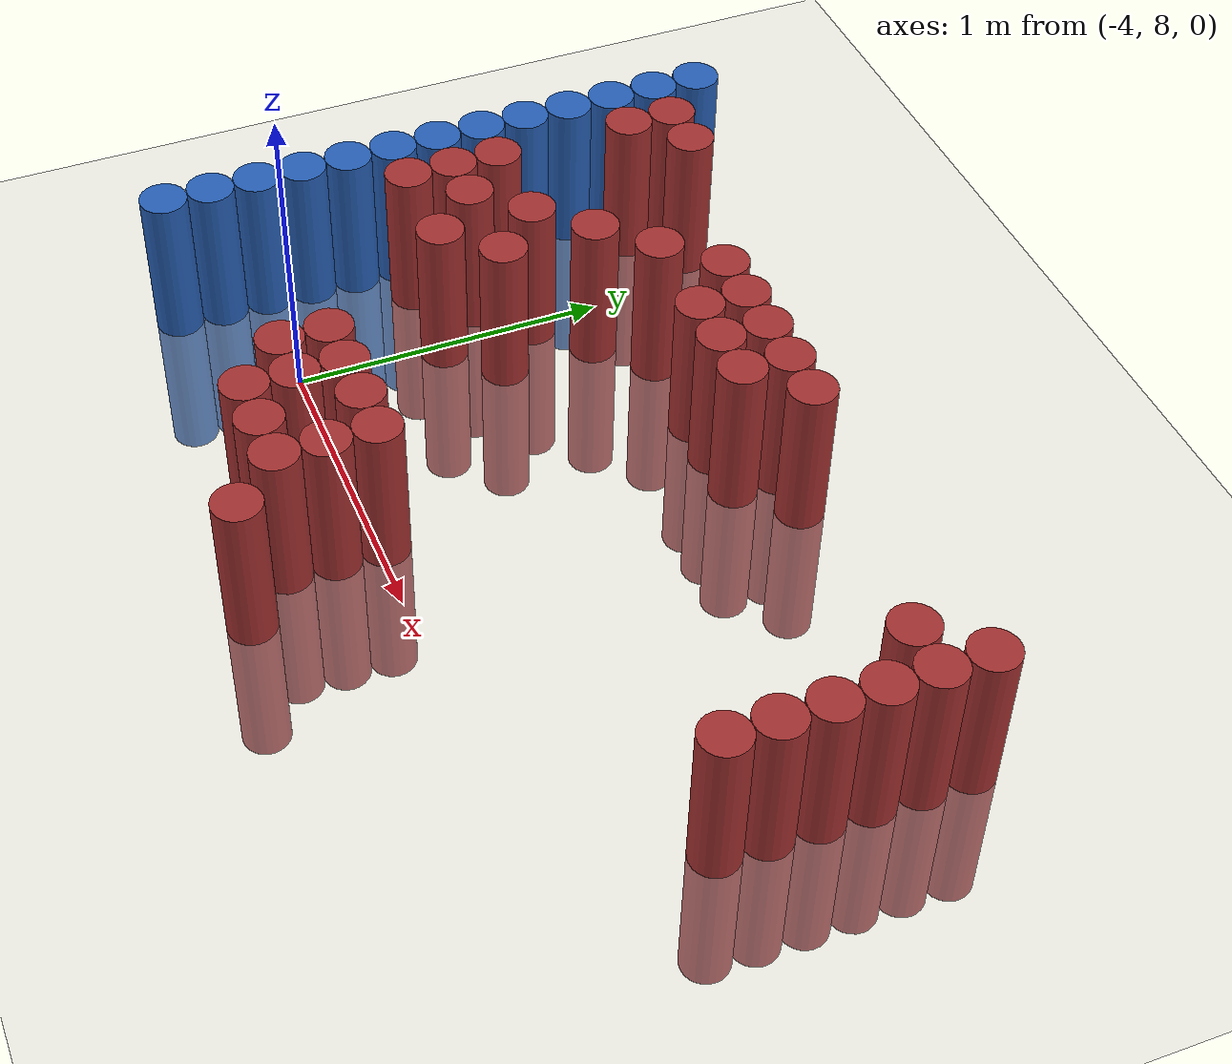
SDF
<sdf version="1.6">
 <world name="default">
  <model name="ground_plane">
   <static>1</static>
   <link name="link">
    <collision name="collision">
     <geometry><plane><normal>0 0 1</normal><size>100 100</size></plane></geometry>
     <surface><friction><ode><mu>100</mu><mu2>50</mu2></ode></friction></surface>
    </collision>
    <visual name="visual">
     <cast_shadows>0</cast_shadows>
     <geometry><plane><normal>0 0 1</normal><size>100 100</size></plane></geometry>
     <material>
      <script><uri>file://media/materials/scripts/gazebo.material</uri><name>Gazebo/Grey</name></script>
     </material>
    </visual>
   </link>
  </model>
  <model name="unit_cylinder_113">
   <static>1</static>
   <pose>-4.425000 7.725000 0.000000 0.000000 0.000000 0.000000</pose>
   <link name="link">
    <inertial>
     <mass>1</mass>
     <inertia><ixx>0.145833</ixx><ixy>0</ixy><ixz>0</ixz><iyy>0.145833</iyy><iyz>0</iyz><izz>0.125</izz></inertia>
    </inertial>
    <collision name="collision">
     <geometry><cylinder><radius>0.075000</radius><length>1</length></cylinder></geometry>
    </collision>
    <visual name="visual">
     <geometry><cylinder><radius>0.075000</radius><length>1</length></cylinder></geometry>
     <material>
      <ambient>0.152000 0.379000 0.720000 1</ambient>
      <diffuse>0.152000 0.379000 0.720000 1</diffuse>
     </material>
     <material>
      <script><name>Gazebo/Grey</name><uri>file://media/materials/scripts/gazebo.material</uri></script>
     </material>
    </visual>
   </link>
  </model>
  <model name="unit_cylinder_114">
   <static>1</static>
   <pose>-4.425000 7.875000 0.000000 0.000000 0.000000 0.000000</pose>
   <link name="link">
    <inertial>
     <mass>1</mass>
     <inertia><ixx>0.145833</ixx><ixy>0</ixy><ixz>0</ixz><iyy>0.145833</iyy><iyz>0</iyz><izz>0.125</izz></inertia>
    </inertial>
    <collision name="collision">
     <geometry><cylinder><radius>0.075000</radius><length>1</length></cylinder></geometry>
    </collision>
    <visual name="visual">
     <geometry><cylinder><radius>0.075000</radius><length>1</length></cylinder></geometry>
     <material>
      <ambient>0.152000 0.379000 0.720000 1</ambient>
      <diffuse>0.152000 0.379000 0.720000 1</diffuse>
     </material>
     <material>
      <script><name>Gazebo/Grey</name><uri>file://media/materials/scripts/gazebo.material</uri></script>
     </material>
    </visual>
   </link>
  </model>
  <model name="unit_cylinder_115">
   <static>1</static>
   <pose>-4.425000 8.025000 0.000000 0.000000 0.000000 0.000000</pose>
   <link name="link">
    <inertial>
     <mass>1</mass>
     <inertia><ixx>0.145833</ixx><ixy>0</ixy><ixz>0</ixz><iyy>0.145833</iyy><iyz>0</iyz><izz>0.125</izz></inertia>
    </inertial>
    <collision name="collision">
     <geometry><cylinder><radius>0.075000</radius><length>1</length></cylinder></geometry>
    </collision>
    <visual name="visual">
     <geometry><cylinder><radius>0.075000</radius><length>1</length></cylinder></geometry>
     <material>
      <ambient>0.152000 0.379000 0.720000 1</ambient>
      <diffuse>0.152000 0.379000 0.720000 1</diffuse>
     </material>
     <material>
      <script><name>Gazebo/Grey</name><uri>file://media/materials/scripts/gazebo.material</uri></script>
     </material>
    </visual>
   </link>
  </model>
  <model name="unit_cylinder_116">
   <static>1</static>
   <pose>-4.425000 8.175000 0.000000 0.000000 0.000000 0.000000</pose>
   <link name="link">
    <inertial>
     <mass>1</mass>
     <inertia><ixx>0.145833</ixx><ixy>0</ixy><ixz>0</ixz><iyy>0.145833</iyy><iyz>0</iyz><izz>0.125</izz></inertia>
    </inertial>
    <collision name="collision">
     <geometry><cylinder><radius>0.075000</radius><length>1</length></cylinder></geometry>
    </collision>
    <visual name="visual">
     <geometry><cylinder><radius>0.075000</radius><length>1</length></cylinder></geometry>
     <material>
      <ambient>0.152000 0.379000 0.720000 1</ambient>
      <diffuse>0.152000 0.379000 0.720000 1</diffuse>
     </material>
     <material>
      <script><name>Gazebo/Grey</name><uri>file://media/materials/scripts/gazebo.material</uri></script>
     </material>
    </visual>
   </link>
  </model>
  <model name="unit_cylinder_117">
   <static>1</static>
   <pose>-4.425000 8.325000 0.000000 0.000000 0.000000 0.000000</pose>
   <link name="link">
    <inertial>
     <mass>1</mass>
     <inertia><ixx>0.145833</ixx><ixy>0</ixy><ixz>0</ixz><iyy>0.145833</iyy><iyz>0</iyz><izz>0.125</izz></inertia>
    </inertial>
    <collision name="collision">
     <geometry><cylinder><radius>0.075000</radius><length>1</length></cylinder></geometry>
    </collision>
    <visual name="visual">
     <geometry><cylinder><radius>0.075000</radius><length>1</length></cylinder></geometry>
     <material>
      <ambient>0.152000 0.379000 0.720000 1</ambient>
      <diffuse>0.152000 0.379000 0.720000 1</diffuse>
     </material>
     <material>
      <script><name>Gazebo/Grey</name><uri>file://media/materials/scripts/gazebo.material</uri></script>
     </material>
    </visual>
   </link>
  </model>
  <model name="unit_cylinder_118">
   <static>1</static>
   <pose>-4.425000 8.475000 0.000000 0.000000 0.000000 0.000000</pose>
   <link name="link">
    <inertial>
     <mass>1</mass>
     <inertia><ixx>0.145833</ixx><ixy>0</ixy><ixz>0</ixz><iyy>0.145833</iyy><iyz>0</iyz><izz>0.125</izz></inertia>
    </inertial>
    <collision name="collision">
     <geometry><cylinder><radius>0.075000</radius><length>1</length></cylinder></geometry>
    </collision>
    <visual name="visual">
     <geometry><cylinder><radius>0.075000</radius><length>1</length></cylinder></geometry>
     <material>
      <ambient>0.152000 0.379000 0.720000 1</ambient>
      <diffuse>0.152000 0.379000 0.720000 1</diffuse>
     </material>
     <material>
      <script><name>Gazebo/Grey</name><uri>file://media/materials/scripts/gazebo.material</uri></script>
     </material>
    </visual>
   </link>
  </model>
  <model name="unit_cylinder_119">
   <static>1</static>
   <pose>-4.425000 8.625000 0.000000 0.000000 0.000000 0.000000</pose>
   <link name="link">
    <inertial>
     <mass>1</mass>
     <inertia><ixx>0.145833</ixx><ixy>0</ixy><ixz>0</ixz><iyy>0.145833</iyy><iyz>0</iyz><izz>0.125</izz></inertia>
    </inertial>
    <collision name="collision">
     <geometry><cylinder><radius>0.075000</radius><length>1</length></cylinder></geometry>
    </collision>
    <visual name="visual">
     <geometry><cylinder><radius>0.075000</radius><length>1</length></cylinder></geometry>
     <material>
      <ambient>0.152000 0.379000 0.720000 1</ambient>
      <diffuse>0.152000 0.379000 0.720000 1</diffuse>
     </material>
     <material>
      <script><name>Gazebo/Grey</name><uri>file://media/materials/scripts/gazebo.material</uri></script>
     </material>
    </visual>
   </link>
  </model>
  <model name="unit_cylinder_120">
   <static>1</static>
   <pose>-4.425000 8.775000 0.000000 0.000000 0.000000 0.000000</pose>
   <link name="link">
    <inertial>
     <mass>1</mass>
     <inertia><ixx>0.145833</ixx><ixy>0</ixy><ixz>0</ixz><iyy>0.145833</iyy><iyz>0</iyz><izz>0.125</izz></inertia>
    </inertial>
    <collision name="collision">
     <geometry><cylinder><radius>0.075000</radius><length>1</length></cylinder></geometry>
    </collision>
    <visual name="visual">
     <geometry><cylinder><radius>0.075000</radius><length>1</length></cylinder></geometry>
     <material>
      <ambient>0.152000 0.379000 0.720000 1</ambient>
      <diffuse>0.152000 0.379000 0.720000 1</diffuse>
     </material>
     <material>
      <script><name>Gazebo/Grey</name><uri>file://media/materials/scripts/gazebo.material</uri></script>
     </material>
    </visual>
   </link>
  </model>
  <model name="unit_cylinder_121">
   <static>1</static>
   <pose>-4.425000 8.925000 0.000000 0.000000 0.000000 0.000000</pose>
   <link name="link">
    <inertial>
     <mass>1</mass>
     <inertia><ixx>0.145833</ixx><ixy>0</ixy><ixz>0</ixz><iyy>0.145833</iyy><iyz>0</iyz><izz>0.125</izz></inertia>
    </inertial>
    <collision name="collision">
     <geometry><cylinder><radius>0.075000</radius><length>1</length></cylinder></geometry>
    </collision>
    <visual name="visual">
     <geometry><cylinder><radius>0.075000</radius><length>1</length></cylinder></geometry>
     <material>
      <ambient>0.152000 0.379000 0.720000 1</ambient>
      <diffuse>0.152000 0.379000 0.720000 1</diffuse>
     </material>
     <material>
      <script><name>Gazebo/Grey</name><uri>file://media/materials/scripts/gazebo.material</uri></script>
     </material>
    </visual>
   </link>
  </model>
  <model name="unit_cylinder_122">
   <static>1</static>
   <pose>-4.425000 9.075000 0.000000 0.000000 0.000000 0.000000</pose>
   <link name="link">
    <inertial>
     <mass>1</mass>
     <inertia><ixx>0.145833</ixx><ixy>0</ixy><ixz>0</ixz><iyy>0.145833</iyy><iyz>0</iyz><izz>0.125</izz></inertia>
    </inertial>
    <collision name="collision">
     <geometry><cylinder><radius>0.075000</radius><length>1</length></cylinder></geometry>
    </collision>
    <visual name="visual">
     <geometry><cylinder><radius>0.075000</radius><length>1</length></cylinder></geometry>
     <material>
      <ambient>0.152000 0.379000 0.720000 1</ambient>
      <diffuse>0.152000 0.379000 0.720000 1</diffuse>
     </material>
     <material>
      <script><name>Gazebo/Grey</name><uri>file://media/materials/scripts/gazebo.material</uri></script>
     </material>
    </visual>
   </link>
  </model>
  <model name="unit_cylinder_123">
   <static>1</static>
   <pose>-4.425000 9.225000 0.000000 0.000000 0.000000 0.000000</pose>
   <link name="link">
    <inertial>
     <mass>1</mass>
     <inertia><ixx>0.145833</ixx><ixy>0</ixy><ixz>0</ixz><iyy>0.145833</iyy><iyz>0</iyz><izz>0.125</izz></inertia>
    </inertial>
    <collision name="collision">
     <geometry><cylinder><radius>0.075000</radius><length>1</length></cylinder></geometry>
    </collision>
    <visual name="visual">
     <geometry><cylinder><radius>0.075000</radius><length>1</length></cylinder></geometry>
     <material>
      <ambient>0.152000 0.379000 0.720000 1</ambient>
      <diffuse>0.152000 0.379000 0.720000 1</diffuse>
     </material>
     <material>
      <script><name>Gazebo/Grey</name><uri>file://media/materials/scripts/gazebo.material</uri></script>
     </material>
    </visual>
   </link>
  </model>
  <model name="unit_cylinder_124">
   <static>1</static>
   <pose>-4.425000 9.375000 0.000000 0.000000 0.000000 0.000000</pose>
   <link name="link">
    <inertial>
     <mass>1</mass>
     <inertia><ixx>0.145833</ixx><ixy>0</ixy><ixz>0</ixz><iyy>0.145833</iyy><iyz>0</iyz><izz>0.125</izz></inertia>
    </inertial>
    <collision name="collision">
     <geometry><cylinder><radius>0.075000</radius><length>1</length></cylinder></geometry>
    </collision>
    <visual name="visual">
     <geometry><cylinder><radius>0.075000</radius><length>1</length></cylinder></geometry>
     <material>
      <ambient>0.152000 0.379000 0.720000 1</ambient>
      <diffuse>0.152000 0.379000 0.720000 1</diffuse>
     </material>
     <material>
      <script><name>Gazebo/Grey</name><uri>file://media/materials/scripts/gazebo.material</uri></script>
     </material>
    </visual>
   </link>
  </model>
  <model name="unit_cylinder_125">
   <static>1</static>
   <pose>-4.425000 9.525000 0.000000 0.000000 0.000000 0.000000</pose>
   <link name="link">
    <inertial>
     <mass>1</mass>
     <inertia><ixx>0.145833</ixx><ixy>0</ixy><ixz>0</ixz><iyy>0.145833</iyy><iyz>0</iyz><izz>0.125</izz></inertia>
    </inertial>
    <collision name="collision">
     <geometry><cylinder><radius>0.075000</radius><length>1</length></cylinder></geometry>
    </collision>
    <visual name="visual">
     <geometry><cylinder><radius>0.075000</radius><length>1</length></cylinder></geometry>
     <material>
      <ambient>0.152000 0.379000 0.720000 1</ambient>
      <diffuse>0.152000 0.379000 0.720000 1</diffuse>
     </material>
     <material>
      <script><name>Gazebo/Grey</name><uri>file://media/materials/scripts/gazebo.material</uri></script>
     </material>
    </visual>
   </link>
  </model>
  <model name="unit_cylinder_129">
   <static>1</static>
   <pose>-4.275000 8.475000 0.000000 0.000000 0.000000 0.000000</pose>
   <link name="link">
    <inertial>
     <mass>1</mass>
     <inertia><ixx>0.145833</ixx><ixy>0</ixy><ixz>0</ixz><iyy>0.145833</iyy><iyz>0</iyz><izz>0.125</izz></inertia>
    </inertial>
    <collision name="collision">
     <geometry><cylinder><radius>0.075000</radius><length>1</length></cylinder></geometry>
    </collision>
    <visual name="visual">
     <geometry><cylinder><radius>0.075000</radius><length>1</length></cylinder></geometry>
     <material>
      <ambient>0.648000 0.192000 0.192000 1</ambient>
      <diffuse>0.648000 0.192000 0.192000 1</diffuse>
     </material>
     <material>
      <script><name>Gazebo/Grey</name><uri>file://media/materials/scripts/gazebo.material</uri></script>
     </material>
    </visual>
   </link>
  </model>
  <model name="unit_cylinder_130">
   <static>1</static>
   <pose>-4.275000 8.625000 0.000000 0.000000 0.000000 0.000000</pose>
   <link name="link">
    <inertial>
     <mass>1</mass>
     <inertia><ixx>0.145833</ixx><ixy>0</ixy><ixz>0</ixz><iyy>0.145833</iyy><iyz>0</iyz><izz>0.125</izz></inertia>
    </inertial>
    <collision name="collision">
     <geometry><cylinder><radius>0.075000</radius><length>1</length></cylinder></geometry>
    </collision>
    <visual name="visual">
     <geometry><cylinder><radius>0.075000</radius><length>1</length></cylinder></geometry>
     <material>
      <ambient>0.648000 0.192000 0.192000 1</ambient>
      <diffuse>0.648000 0.192000 0.192000 1</diffuse>
     </material>
     <material>
      <script><name>Gazebo/Grey</name><uri>file://media/materials/scripts/gazebo.material</uri></script>
     </material>
    </visual>
   </link>
  </model>
  <model name="unit_cylinder_131">
   <static>1</static>
   <pose>-4.275000 8.775000 0.000000 0.000000 0.000000 0.000000</pose>
   <link name="link">
    <inertial>
     <mass>1</mass>
     <inertia><ixx>0.145833</ixx><ixy>0</ixy><ixz>0</ixz><iyy>0.145833</iyy><iyz>0</iyz><izz>0.125</izz></inertia>
    </inertial>
    <collision name="collision">
     <geometry><cylinder><radius>0.075000</radius><length>1</length></cylinder></geometry>
    </collision>
    <visual name="visual">
     <geometry><cylinder><radius>0.075000</radius><length>1</length></cylinder></geometry>
     <material>
      <ambient>0.648000 0.192000 0.192000 1</ambient>
      <diffuse>0.648000 0.192000 0.192000 1</diffuse>
     </material>
     <material>
      <script><name>Gazebo/Grey</name><uri>file://media/materials/scripts/gazebo.material</uri></script>
     </material>
    </visual>
   </link>
  </model>
  <model name="unit_cylinder_132">
   <static>1</static>
   <pose>-4.275000 9.225000 0.000000 0.000000 0.000000 0.000000</pose>
   <link name="link">
    <inertial>
     <mass>1</mass>
     <inertia><ixx>0.145833</ixx><ixy>0</ixy><ixz>0</ixz><iyy>0.145833</iyy><iyz>0</iyz><izz>0.125</izz></inertia>
    </inertial>
    <collision name="collision">
     <geometry><cylinder><radius>0.075000</radius><length>1</length></cylinder></geometry>
    </collision>
    <visual name="visual">
     <geometry><cylinder><radius>0.075000</radius><length>1</length></cylinder></geometry>
     <material>
      <ambient>0.648000 0.192000 0.192000 1</ambient>
      <diffuse>0.648000 0.192000 0.192000 1</diffuse>
     </material>
     <material>
      <script><name>Gazebo/Grey</name><uri>file://media/materials/scripts/gazebo.material</uri></script>
     </material>
    </visual>
   </link>
  </model>
  <model name="unit_cylinder_133">
   <static>1</static>
   <pose>-4.275000 9.375000 0.000000 0.000000 0.000000 0.000000</pose>
   <link name="link">
    <inertial>
     <mass>1</mass>
     <inertia><ixx>0.145833</ixx><ixy>0</ixy><ixz>0</ixz><iyy>0.145833</iyy><iyz>0</iyz><izz>0.125</izz></inertia>
    </inertial>
    <collision name="collision">
     <geometry><cylinder><radius>0.075000</radius><length>1</length></cylinder></geometry>
    </collision>
    <visual name="visual">
     <geometry><cylinder><radius>0.075000</radius><length>1</length></cylinder></geometry>
     <material>
      <ambient>0.648000 0.192000 0.192000 1</ambient>
      <diffuse>0.648000 0.192000 0.192000 1</diffuse>
     </material>
     <material>
      <script><name>Gazebo/Grey</name><uri>file://media/materials/scripts/gazebo.material</uri></script>
     </material>
    </visual>
   </link>
  </model>
  <model name="unit_cylinder_138">
   <static>1</static>
   <pose>-4.125000 8.625000 0.000000 0.000000 0.000000 0.000000</pose>
   <link name="link">
    <inertial>
     <mass>1</mass>
     <inertia><ixx>0.145833</ixx><ixy>0</ixy><ixz>0</ixz><iyy>0.145833</iyy><iyz>0</iyz><izz>0.125</izz></inertia>
    </inertial>
    <collision name="collision">
     <geometry><cylinder><radius>0.075000</radius><length>1</length></cylinder></geometry>
    </collision>
    <visual name="visual">
     <geometry><cylinder><radius>0.075000</radius><length>1</length></cylinder></geometry>
     <material>
      <ambient>0.648000 0.192000 0.192000 1</ambient>
      <diffuse>0.648000 0.192000 0.192000 1</diffuse>
     </material>
     <material>
      <script><name>Gazebo/Grey</name><uri>file://media/materials/scripts/gazebo.material</uri></script>
     </material>
    </visual>
   </link>
  </model>
  <model name="unit_cylinder_139">
   <static>1</static>
   <pose>-4.125000 9.375000 0.000000 0.000000 0.000000 0.000000</pose>
   <link name="link">
    <inertial>
     <mass>1</mass>
     <inertia><ixx>0.145833</ixx><ixy>0</ixy><ixz>0</ixz><iyy>0.145833</iyy><iyz>0</iyz><izz>0.125</izz></inertia>
    </inertial>
    <collision name="collision">
     <geometry><cylinder><radius>0.075000</radius><length>1</length></cylinder></geometry>
    </collision>
    <visual name="visual">
     <geometry><cylinder><radius>0.075000</radius><length>1</length></cylinder></geometry>
     <material>
      <ambient>0.648000 0.192000 0.192000 1</ambient>
      <diffuse>0.648000 0.192000 0.192000 1</diffuse>
     </material>
     <material>
      <script><name>Gazebo/Grey</name><uri>file://media/materials/scripts/gazebo.material</uri></script>
     </material>
    </visual>
   </link>
  </model>
  <model name="unit_cylinder_149">
   <static>1</static>
   <pose>-3.975000 8.475000 0.000000 0.000000 0.000000 0.000000</pose>
   <link name="link">
    <inertial>
     <mass>1</mass>
     <inertia><ixx>0.145833</ixx><ixy>0</ixy><ixz>0</ixz><iyy>0.145833</iyy><iyz>0</iyz><izz>0.125</izz></inertia>
    </inertial>
    <collision name="collision">
     <geometry><cylinder><radius>0.075000</radius><length>1</length></cylinder></geometry>
    </collision>
    <visual name="visual">
     <geometry><cylinder><radius>0.075000</radius><length>1</length></cylinder></geometry>
     <material>
      <ambient>0.648000 0.192000 0.192000 1</ambient>
      <diffuse>0.648000 0.192000 0.192000 1</diffuse>
     </material>
     <material>
      <script><name>Gazebo/Grey</name><uri>file://media/materials/scripts/gazebo.material</uri></script>
     </material>
    </visual>
   </link>
  </model>
  <model name="unit_cylinder_150">
   <static>1</static>
   <pose>-3.975000 8.775000 0.000000 0.000000 0.000000 0.000000</pose>
   <link name="link">
    <inertial>
     <mass>1</mass>
     <inertia><ixx>0.145833</ixx><ixy>0</ixy><ixz>0</ixz><iyy>0.145833</iyy><iyz>0</iyz><izz>0.125</izz></inertia>
    </inertial>
    <collision name="collision">
     <geometry><cylinder><radius>0.075000</radius><length>1</length></cylinder></geometry>
    </collision>
    <visual name="visual">
     <geometry><cylinder><radius>0.075000</radius><length>1</length></cylinder></geometry>
     <material>
      <ambient>0.648000 0.192000 0.192000 1</ambient>
      <diffuse>0.648000 0.192000 0.192000 1</diffuse>
     </material>
     <material>
      <script><name>Gazebo/Grey</name><uri>file://media/materials/scripts/gazebo.material</uri></script>
     </material>
    </visual>
   </link>
  </model>
  <model name="unit_cylinder_160">
   <static>1</static>
   <pose>-3.825000 8.625000 0.000000 0.000000 0.000000 0.000000</pose>
   <link name="link">
    <inertial>
     <mass>1</mass>
     <inertia><ixx>0.145833</ixx><ixy>0</ixy><ixz>0</ixz><iyy>0.145833</iyy><iyz>0</iyz><izz>0.125</izz></inertia>
    </inertial>
    <collision name="collision">
     <geometry><cylinder><radius>0.075000</radius><length>1</length></cylinder></geometry>
    </collision>
    <visual name="visual">
     <geometry><cylinder><radius>0.075000</radius><length>1</length></cylinder></geometry>
     <material>
      <ambient>0.648000 0.192000 0.192000 1</ambient>
      <diffuse>0.648000 0.192000 0.192000 1</diffuse>
     </material>
     <material>
      <script><name>Gazebo/Grey</name><uri>file://media/materials/scripts/gazebo.material</uri></script>
     </material>
    </visual>
   </link>
  </model>
  <model name="unit_cylinder_161">
   <static>1</static>
   <pose>-3.825000 8.925000 0.000000 0.000000 0.000000 0.000000</pose>
   <link name="link">
    <inertial>
     <mass>1</mass>
     <inertia><ixx>0.145833</ixx><ixy>0</ixy><ixz>0</ixz><iyy>0.145833</iyy><iyz>0</iyz><izz>0.125</izz></inertia>
    </inertial>
    <collision name="collision">
     <geometry><cylinder><radius>0.075000</radius><length>1</length></cylinder></geometry>
    </collision>
    <visual name="visual">
     <geometry><cylinder><radius>0.075000</radius><length>1</length></cylinder></geometry>
     <material>
      <ambient>0.648000 0.192000 0.192000 1</ambient>
      <diffuse>0.648000 0.192000 0.192000 1</diffuse>
     </material>
     <material>
      <script><name>Gazebo/Grey</name><uri>file://media/materials/scripts/gazebo.material</uri></script>
     </material>
    </visual>
   </link>
  </model>
  <model name="unit_cylinder_167">
   <static>1</static>
   <pose>-3.675000 7.875000 0.000000 0.000000 0.000000 0.000000</pose>
   <link name="link">
    <inertial>
     <mass>1</mass>
     <inertia><ixx>0.145833</ixx><ixy>0</ixy><ixz>0</ixz><iyy>0.145833</iyy><iyz>0</iyz><izz>0.125</izz></inertia>
    </inertial>
    <collision name="collision">
     <geometry><cylinder><radius>0.075000</radius><length>1</length></cylinder></geometry>
    </collision>
    <visual name="visual">
     <geometry><cylinder><radius>0.075000</radius><length>1</length></cylinder></geometry>
     <material>
      <ambient>0.648000 0.192000 0.192000 1</ambient>
      <diffuse>0.648000 0.192000 0.192000 1</diffuse>
     </material>
     <material>
      <script><name>Gazebo/Grey</name><uri>file://media/materials/scripts/gazebo.material</uri></script>
     </material>
    </visual>
   </link>
  </model>
  <model name="unit_cylinder_168">
   <static>1</static>
   <pose>-3.675000 8.025000 0.000000 0.000000 0.000000 0.000000</pose>
   <link name="link">
    <inertial>
     <mass>1</mass>
     <inertia><ixx>0.145833</ixx><ixy>0</ixy><ixz>0</ixz><iyy>0.145833</iyy><iyz>0</iyz><izz>0.125</izz></inertia>
    </inertial>
    <collision name="collision">
     <geometry><cylinder><radius>0.075000</radius><length>1</length></cylinder></geometry>
    </collision>
    <visual name="visual">
     <geometry><cylinder><radius>0.075000</radius><length>1</length></cylinder></geometry>
     <material>
      <ambient>0.648000 0.192000 0.192000 1</ambient>
      <diffuse>0.648000 0.192000 0.192000 1</diffuse>
     </material>
     <material>
      <script><name>Gazebo/Grey</name><uri>file://media/materials/scripts/gazebo.material</uri></script>
     </material>
    </visual>
   </link>
  </model>
  <model name="unit_cylinder_169">
   <static>1</static>
   <pose>-3.675000 9.075000 0.000000 0.000000 0.000000 0.000000</pose>
   <link name="link">
    <inertial>
     <mass>1</mass>
     <inertia><ixx>0.145833</ixx><ixy>0</ixy><ixz>0</ixz><iyy>0.145833</iyy><iyz>0</iyz><izz>0.125</izz></inertia>
    </inertial>
    <collision name="collision">
     <geometry><cylinder><radius>0.075000</radius><length>1</length></cylinder></geometry>
    </collision>
    <visual name="visual">
     <geometry><cylinder><radius>0.075000</radius><length>1</length></cylinder></geometry>
     <material>
      <ambient>0.648000 0.192000 0.192000 1</ambient>
      <diffuse>0.648000 0.192000 0.192000 1</diffuse>
     </material>
     <material>
      <script><name>Gazebo/Grey</name><uri>file://media/materials/scripts/gazebo.material</uri></script>
     </material>
    </visual>
   </link>
  </model>
  <model name="unit_cylinder_180">
   <static>1</static>
   <pose>-3.525000 7.725000 0.000000 0.000000 0.000000 0.000000</pose>
   <link name="link">
    <inertial>
     <mass>1</mass>
     <inertia><ixx>0.145833</ixx><ixy>0</ixy><ixz>0</ixz><iyy>0.145833</iyy><iyz>0</iyz><izz>0.125</izz></inertia>
    </inertial>
    <collision name="collision">
     <geometry><cylinder><radius>0.075000</radius><length>1</length></cylinder></geometry>
    </collision>
    <visual name="visual">
     <geometry><cylinder><radius>0.075000</radius><length>1</length></cylinder></geometry>
     <material>
      <ambient>0.648000 0.192000 0.192000 1</ambient>
      <diffuse>0.648000 0.192000 0.192000 1</diffuse>
     </material>
     <material>
      <script><name>Gazebo/Grey</name><uri>file://media/materials/scripts/gazebo.material</uri></script>
     </material>
    </visual>
   </link>
  </model>
  <model name="unit_cylinder_181">
   <static>1</static>
   <pose>-3.525000 7.875000 0.000000 0.000000 0.000000 0.000000</pose>
   <link name="link">
    <inertial>
     <mass>1</mass>
     <inertia><ixx>0.145833</ixx><ixy>0</ixy><ixz>0</ixz><iyy>0.145833</iyy><iyz>0</iyz><izz>0.125</izz></inertia>
    </inertial>
    <collision name="collision">
     <geometry><cylinder><radius>0.075000</radius><length>1</length></cylinder></geometry>
    </collision>
    <visual name="visual">
     <geometry><cylinder><radius>0.075000</radius><length>1</length></cylinder></geometry>
     <material>
      <ambient>0.648000 0.192000 0.192000 1</ambient>
      <diffuse>0.648000 0.192000 0.192000 1</diffuse>
     </material>
     <material>
      <script><name>Gazebo/Grey</name><uri>file://media/materials/scripts/gazebo.material</uri></script>
     </material>
    </visual>
   </link>
  </model>
  <model name="unit_cylinder_182">
   <static>1</static>
   <pose>-3.525000 8.025000 0.000000 0.000000 0.000000 0.000000</pose>
   <link name="link">
    <inertial>
     <mass>1</mass>
     <inertia><ixx>0.145833</ixx><ixy>0</ixy><ixz>0</ixz><iyy>0.145833</iyy><iyz>0</iyz><izz>0.125</izz></inertia>
    </inertial>
    <collision name="collision">
     <geometry><cylinder><radius>0.075000</radius><length>1</length></cylinder></geometry>
    </collision>
    <visual name="visual">
     <geometry><cylinder><radius>0.075000</radius><length>1</length></cylinder></geometry>
     <material>
      <ambient>0.648000 0.192000 0.192000 1</ambient>
      <diffuse>0.648000 0.192000 0.192000 1</diffuse>
     </material>
     <material>
      <script><name>Gazebo/Grey</name><uri>file://media/materials/scripts/gazebo.material</uri></script>
     </material>
    </visual>
   </link>
  </model>
  <model name="unit_cylinder_183">
   <static>1</static>
   <pose>-3.525000 9.225000 0.000000 0.000000 0.000000 0.000000</pose>
   <link name="link">
    <inertial>
     <mass>1</mass>
     <inertia><ixx>0.145833</ixx><ixy>0</ixy><ixz>0</ixz><iyy>0.145833</iyy><iyz>0</iyz><izz>0.125</izz></inertia>
    </inertial>
    <collision name="collision">
     <geometry><cylinder><radius>0.075000</radius><length>1</length></cylinder></geometry>
    </collision>
    <visual name="visual">
     <geometry><cylinder><radius>0.075000</radius><length>1</length></cylinder></geometry>
     <material>
      <ambient>0.648000 0.192000 0.192000 1</ambient>
      <diffuse>0.648000 0.192000 0.192000 1</diffuse>
     </material>
     <material>
      <script><name>Gazebo/Grey</name><uri>file://media/materials/scripts/gazebo.material</uri></script>
     </material>
    </visual>
   </link>
  </model>
  <model name="unit_cylinder_193">
   <static>1</static>
   <pose>-3.375000 7.725000 0.000000 0.000000 0.000000 0.000000</pose>
   <link name="link">
    <inertial>
     <mass>1</mass>
     <inertia><ixx>0.145833</ixx><ixy>0</ixy><ixz>0</ixz><iyy>0.145833</iyy><iyz>0</iyz><izz>0.125</izz></inertia>
    </inertial>
    <collision name="collision">
     <geometry><cylinder><radius>0.075000</radius><length>1</length></cylinder></geometry>
    </collision>
    <visual name="visual">
     <geometry><cylinder><radius>0.075000</radius><length>1</length></cylinder></geometry>
     <material>
      <ambient>0.648000 0.192000 0.192000 1</ambient>
      <diffuse>0.648000 0.192000 0.192000 1</diffuse>
     </material>
     <material>
      <script><name>Gazebo/Grey</name><uri>file://media/materials/scripts/gazebo.material</uri></script>
     </material>
    </visual>
   </link>
  </model>
  <model name="unit_cylinder_194">
   <static>1</static>
   <pose>-3.375000 8.025000 0.000000 0.000000 0.000000 0.000000</pose>
   <link name="link">
    <inertial>
     <mass>1</mass>
     <inertia><ixx>0.145833</ixx><ixy>0</ixy><ixz>0</ixz><iyy>0.145833</iyy><iyz>0</iyz><izz>0.125</izz></inertia>
    </inertial>
    <collision name="collision">
     <geometry><cylinder><radius>0.075000</radius><length>1</length></cylinder></geometry>
    </collision>
    <visual name="visual">
     <geometry><cylinder><radius>0.075000</radius><length>1</length></cylinder></geometry>
     <material>
      <ambient>0.648000 0.192000 0.192000 1</ambient>
      <diffuse>0.648000 0.192000 0.192000 1</diffuse>
     </material>
     <material>
      <script><name>Gazebo/Grey</name><uri>file://media/materials/scripts/gazebo.material</uri></script>
     </material>
    </visual>
   </link>
  </model>
  <model name="unit_cylinder_195">
   <static>1</static>
   <pose>-3.375000 9.075000 0.000000 0.000000 0.000000 0.000000</pose>
   <link name="link">
    <inertial>
     <mass>1</mass>
     <inertia><ixx>0.145833</ixx><ixy>0</ixy><ixz>0</ixz><iyy>0.145833</iyy><iyz>0</iyz><izz>0.125</izz></inertia>
    </inertial>
    <collision name="collision">
     <geometry><cylinder><radius>0.075000</radius><length>1</length></cylinder></geometry>
    </collision>
    <visual name="visual">
     <geometry><cylinder><radius>0.075000</radius><length>1</length></cylinder></geometry>
     <material>
      <ambient>0.648000 0.192000 0.192000 1</ambient>
      <diffuse>0.648000 0.192000 0.192000 1</diffuse>
     </material>
     <material>
      <script><name>Gazebo/Grey</name><uri>file://media/materials/scripts/gazebo.material</uri></script>
     </material>
    </visual>
   </link>
  </model>
  <model name="unit_cylinder_196">
   <static>1</static>
   <pose>-3.375000 9.225000 0.000000 0.000000 0.000000 0.000000</pose>
   <link name="link">
    <inertial>
     <mass>1</mass>
     <inertia><ixx>0.145833</ixx><ixy>0</ixy><ixz>0</ixz><iyy>0.145833</iyy><iyz>0</iyz><izz>0.125</izz></inertia>
    </inertial>
    <collision name="collision">
     <geometry><cylinder><radius>0.075000</radius><length>1</length></cylinder></geometry>
    </collision>
    <visual name="visual">
     <geometry><cylinder><radius>0.075000</radius><length>1</length></cylinder></geometry>
     <material>
      <ambient>0.648000 0.192000 0.192000 1</ambient>
      <diffuse>0.648000 0.192000 0.192000 1</diffuse>
     </material>
     <material>
      <script><name>Gazebo/Grey</name><uri>file://media/materials/scripts/gazebo.material</uri></script>
     </material>
    </visual>
   </link>
  </model>
  <model name="unit_cylinder_204">
   <static>1</static>
   <pose>-3.225000 7.725000 0.000000 0.000000 0.000000 0.000000</pose>
   <link name="link">
    <inertial>
     <mass>1</mass>
     <inertia><ixx>0.145833</ixx><ixy>0</ixy><ixz>0</ixz><iyy>0.145833</iyy><iyz>0</iyz><izz>0.125</izz></inertia>
    </inertial>
    <collision name="collision">
     <geometry><cylinder><radius>0.075000</radius><length>1</length></cylinder></geometry>
    </collision>
    <visual name="visual">
     <geometry><cylinder><radius>0.075000</radius><length>1</length></cylinder></geometry>
     <material>
      <ambient>0.648000 0.192000 0.192000 1</ambient>
      <diffuse>0.648000 0.192000 0.192000 1</diffuse>
     </material>
     <material>
      <script><name>Gazebo/Grey</name><uri>file://media/materials/scripts/gazebo.material</uri></script>
     </material>
    </visual>
   </link>
  </model>
  <model name="unit_cylinder_205">
   <static>1</static>
   <pose>-3.225000 7.875000 0.000000 0.000000 0.000000 0.000000</pose>
   <link name="link">
    <inertial>
     <mass>1</mass>
     <inertia><ixx>0.145833</ixx><ixy>0</ixy><ixz>0</ixz><iyy>0.145833</iyy><iyz>0</iyz><izz>0.125</izz></inertia>
    </inertial>
    <collision name="collision">
     <geometry><cylinder><radius>0.075000</radius><length>1</length></cylinder></geometry>
    </collision>
    <visual name="visual">
     <geometry><cylinder><radius>0.075000</radius><length>1</length></cylinder></geometry>
     <material>
      <ambient>0.648000 0.192000 0.192000 1</ambient>
      <diffuse>0.648000 0.192000 0.192000 1</diffuse>
     </material>
     <material>
      <script><name>Gazebo/Grey</name><uri>file://media/materials/scripts/gazebo.material</uri></script>
     </material>
    </visual>
   </link>
  </model>
  <model name="unit_cylinder_206">
   <static>1</static>
   <pose>-3.225000 8.025000 0.000000 0.000000 0.000000 0.000000</pose>
   <link name="link">
    <inertial>
     <mass>1</mass>
     <inertia><ixx>0.145833</ixx><ixy>0</ixy><ixz>0</ixz><iyy>0.145833</iyy><iyz>0</iyz><izz>0.125</izz></inertia>
    </inertial>
    <collision name="collision">
     <geometry><cylinder><radius>0.075000</radius><length>1</length></cylinder></geometry>
    </collision>
    <visual name="visual">
     <geometry><cylinder><radius>0.075000</radius><length>1</length></cylinder></geometry>
     <material>
      <ambient>0.648000 0.192000 0.192000 1</ambient>
      <diffuse>0.648000 0.192000 0.192000 1</diffuse>
     </material>
     <material>
      <script><name>Gazebo/Grey</name><uri>file://media/materials/scripts/gazebo.material</uri></script>
     </material>
    </visual>
   </link>
  </model>
  <model name="unit_cylinder_207">
   <static>1</static>
   <pose>-3.225000 9.075000 0.000000 0.000000 0.000000 0.000000</pose>
   <link name="link">
    <inertial>
     <mass>1</mass>
     <inertia><ixx>0.145833</ixx><ixy>0</ixy><ixz>0</ixz><iyy>0.145833</iyy><iyz>0</iyz><izz>0.125</izz></inertia>
    </inertial>
    <collision name="collision">
     <geometry><cylinder><radius>0.075000</radius><length>1</length></cylinder></geometry>
    </collision>
    <visual name="visual">
     <geometry><cylinder><radius>0.075000</radius><length>1</length></cylinder></geometry>
     <material>
      <ambient>0.648000 0.192000 0.192000 1</ambient>
      <diffuse>0.648000 0.192000 0.192000 1</diffuse>
     </material>
     <material>
      <script><name>Gazebo/Grey</name><uri>file://media/materials/scripts/gazebo.material</uri></script>
     </material>
    </visual>
   </link>
  </model>
  <model name="unit_cylinder_208">
   <static>1</static>
   <pose>-3.225000 9.225000 0.000000 0.000000 0.000000 0.000000</pose>
   <link name="link">
    <inertial>
     <mass>1</mass>
     <inertia><ixx>0.145833</ixx><ixy>0</ixy><ixz>0</ixz><iyy>0.145833</iyy><iyz>0</iyz><izz>0.125</izz></inertia>
    </inertial>
    <collision name="collision">
     <geometry><cylinder><radius>0.075000</radius><length>1</length></cylinder></geometry>
    </collision>
    <visual name="visual">
     <geometry><cylinder><radius>0.075000</radius><length>1</length></cylinder></geometry>
     <material>
      <ambient>0.648000 0.192000 0.192000 1</ambient>
      <diffuse>0.648000 0.192000 0.192000 1</diffuse>
     </material>
     <material>
      <script><name>Gazebo/Grey</name><uri>file://media/materials/scripts/gazebo.material</uri></script>
     </material>
    </visual>
   </link>
  </model>
  <model name="unit_cylinder_211">
   <static>1</static>
   <pose>-3.075000 7.575000 0.000000 0.000000 0.000000 0.000000</pose>
   <link name="link">
    <inertial>
     <mass>1</mass>
     <inertia><ixx>0.145833</ixx><ixy>0</ixy><ixz>0</ixz><iyy>0.145833</iyy><iyz>0</iyz><izz>0.125</izz></inertia>
    </inertial>
    <collision name="collision">
     <geometry><cylinder><radius>0.075000</radius><length>1</length></cylinder></geometry>
    </collision>
    <visual name="visual">
     <geometry><cylinder><radius>0.075000</radius><length>1</length></cylinder></geometry>
     <material>
      <ambient>0.648000 0.192000 0.192000 1</ambient>
      <diffuse>0.648000 0.192000 0.192000 1</diffuse>
     </material>
     <material>
      <script><name>Gazebo/Grey</name><uri>file://media/materials/scripts/gazebo.material</uri></script>
     </material>
    </visual>
   </link>
  </model>
  <model name="unit_cylinder_212">
   <static>1</static>
   <pose>-3.075000 9.075000 0.000000 0.000000 0.000000 0.000000</pose>
   <link name="link">
    <inertial>
     <mass>1</mass>
     <inertia><ixx>0.145833</ixx><ixy>0</ixy><ixz>0</ixz><iyy>0.145833</iyy><iyz>0</iyz><izz>0.125</izz></inertia>
    </inertial>
    <collision name="collision">
     <geometry><cylinder><radius>0.075000</radius><length>1</length></cylinder></geometry>
    </collision>
    <visual name="visual">
     <geometry><cylinder><radius>0.075000</radius><length>1</length></cylinder></geometry>
     <material>
      <ambient>0.648000 0.192000 0.192000 1</ambient>
      <diffuse>0.648000 0.192000 0.192000 1</diffuse>
     </material>
     <material>
      <script><name>Gazebo/Grey</name><uri>file://media/materials/scripts/gazebo.material</uri></script>
     </material>
    </visual>
   </link>
  </model>
  <model name="unit_cylinder_213">
   <static>1</static>
   <pose>-3.075000 9.225000 0.000000 0.000000 0.000000 0.000000</pose>
   <link name="link">
    <inertial>
     <mass>1</mass>
     <inertia><ixx>0.145833</ixx><ixy>0</ixy><ixz>0</ixz><iyy>0.145833</iyy><iyz>0</iyz><izz>0.125</izz></inertia>
    </inertial>
    <collision name="collision">
     <geometry><cylinder><radius>0.075000</radius><length>1</length></cylinder></geometry>
    </collision>
    <visual name="visual">
     <geometry><cylinder><radius>0.075000</radius><length>1</length></cylinder></geometry>
     <material>
      <ambient>0.648000 0.192000 0.192000 1</ambient>
      <diffuse>0.648000 0.192000 0.192000 1</diffuse>
     </material>
     <material>
      <script><name>Gazebo/Grey</name><uri>file://media/materials/scripts/gazebo.material</uri></script>
     </material>
    </visual>
   </link>
  </model>
  <model name="unit_cylinder_216">
   <static>1</static>
   <pose>-2.925000 9.225000 0.000000 0.000000 0.000000 0.000000</pose>
   <link name="link">
    <inertial>
     <mass>1</mass>
     <inertia><ixx>0.145833</ixx><ixy>0</ixy><ixz>0</ixz><iyy>0.145833</iyy><iyz>0</iyz><izz>0.125</izz></inertia>
    </inertial>
    <collision name="collision">
     <geometry><cylinder><radius>0.075000</radius><length>1</length></cylinder></geometry>
    </collision>
    <visual name="visual">
     <geometry><cylinder><radius>0.075000</radius><length>1</length></cylinder></geometry>
     <material>
      <ambient>0.648000 0.192000 0.192000 1</ambient>
      <diffuse>0.648000 0.192000 0.192000 1</diffuse>
     </material>
     <material>
      <script><name>Gazebo/Grey</name><uri>file://media/materials/scripts/gazebo.material</uri></script>
     </material>
    </visual>
   </link>
  </model>
  <model name="unit_cylinder_224">
   <static>1</static>
   <pose>-2.025000 9.075000 0.000000 0.000000 0.000000 0.000000</pose>
   <link name="link">
    <inertial>
     <mass>1</mass>
     <inertia><ixx>0.145833</ixx><ixy>0</ixy><ixz>0</ixz><iyy>0.145833</iyy><iyz>0</iyz><izz>0.125</izz></inertia>
    </inertial>
    <collision name="collision">
     <geometry><cylinder><radius>0.075000</radius><length>1</length></cylinder></geometry>
    </collision>
    <visual name="visual">
     <geometry><cylinder><radius>0.075000</radius><length>1</length></cylinder></geometry>
     <material>
      <ambient>0.648000 0.192000 0.192000 1</ambient>
      <diffuse>0.648000 0.192000 0.192000 1</diffuse>
     </material>
     <material>
      <script><name>Gazebo/Grey</name><uri>file://media/materials/scripts/gazebo.material</uri></script>
     </material>
    </visual>
   </link>
  </model>
  <model name="unit_cylinder_229">
   <static>1</static>
   <pose>-1.875000 8.475000 0.000000 0.000000 0.000000 0.000000</pose>
   <link name="link">
    <inertial>
     <mass>1</mass>
     <inertia><ixx>0.145833</ixx><ixy>0</ixy><ixz>0</ixz><iyy>0.145833</iyy><iyz>0</iyz><izz>0.125</izz></inertia>
    </inertial>
    <collision name="collision">
     <geometry><cylinder><radius>0.075000</radius><length>1</length></cylinder></geometry>
    </collision>
    <visual name="visual">
     <geometry><cylinder><radius>0.075000</radius><length>1</length></cylinder></geometry>
     <material>
      <ambient>0.648000 0.192000 0.192000 1</ambient>
      <diffuse>0.648000 0.192000 0.192000 1</diffuse>
     </material>
     <material>
      <script><name>Gazebo/Grey</name><uri>file://media/materials/scripts/gazebo.material</uri></script>
     </material>
    </visual>
   </link>
  </model>
  <model name="unit_cylinder_230">
   <static>1</static>
   <pose>-1.875000 8.625000 0.000000 0.000000 0.000000 0.000000</pose>
   <link name="link">
    <inertial>
     <mass>1</mass>
     <inertia><ixx>0.145833</ixx><ixy>0</ixy><ixz>0</ixz><iyy>0.145833</iyy><iyz>0</iyz><izz>0.125</izz></inertia>
    </inertial>
    <collision name="collision">
     <geometry><cylinder><radius>0.075000</radius><length>1</length></cylinder></geometry>
    </collision>
    <visual name="visual">
     <geometry><cylinder><radius>0.075000</radius><length>1</length></cylinder></geometry>
     <material>
      <ambient>0.648000 0.192000 0.192000 1</ambient>
      <diffuse>0.648000 0.192000 0.192000 1</diffuse>
     </material>
     <material>
      <script><name>Gazebo/Grey</name><uri>file://media/materials/scripts/gazebo.material</uri></script>
     </material>
    </visual>
   </link>
  </model>
  <model name="unit_cylinder_231">
   <static>1</static>
   <pose>-1.875000 8.775000 0.000000 0.000000 0.000000 0.000000</pose>
   <link name="link">
    <inertial>
     <mass>1</mass>
     <inertia><ixx>0.145833</ixx><ixy>0</ixy><ixz>0</ixz><iyy>0.145833</iyy><iyz>0</iyz><izz>0.125</izz></inertia>
    </inertial>
    <collision name="collision">
     <geometry><cylinder><radius>0.075000</radius><length>1</length></cylinder></geometry>
    </collision>
    <visual name="visual">
     <geometry><cylinder><radius>0.075000</radius><length>1</length></cylinder></geometry>
     <material>
      <ambient>0.648000 0.192000 0.192000 1</ambient>
      <diffuse>0.648000 0.192000 0.192000 1</diffuse>
     </material>
     <material>
      <script><name>Gazebo/Grey</name><uri>file://media/materials/scripts/gazebo.material</uri></script>
     </material>
    </visual>
   </link>
  </model>
  <model name="unit_cylinder_232">
   <static>1</static>
   <pose>-1.875000 8.925000 0.000000 0.000000 0.000000 0.000000</pose>
   <link name="link">
    <inertial>
     <mass>1</mass>
     <inertia><ixx>0.145833</ixx><ixy>0</ixy><ixz>0</ixz><iyy>0.145833</iyy><iyz>0</iyz><izz>0.125</izz></inertia>
    </inertial>
    <collision name="collision">
     <geometry><cylinder><radius>0.075000</radius><length>1</length></cylinder></geometry>
    </collision>
    <visual name="visual">
     <geometry><cylinder><radius>0.075000</radius><length>1</length></cylinder></geometry>
     <material>
      <ambient>0.648000 0.192000 0.192000 1</ambient>
      <diffuse>0.648000 0.192000 0.192000 1</diffuse>
     </material>
     <material>
      <script><name>Gazebo/Grey</name><uri>file://media/materials/scripts/gazebo.material</uri></script>
     </material>
    </visual>
   </link>
  </model>
  <model name="unit_cylinder_233">
   <static>1</static>
   <pose>-1.875000 9.075000 0.000000 0.000000 0.000000 0.000000</pose>
   <link name="link">
    <inertial>
     <mass>1</mass>
     <inertia><ixx>0.145833</ixx><ixy>0</ixy><ixz>0</ixz><iyy>0.145833</iyy><iyz>0</iyz><izz>0.125</izz></inertia>
    </inertial>
    <collision name="collision">
     <geometry><cylinder><radius>0.075000</radius><length>1</length></cylinder></geometry>
    </collision>
    <visual name="visual">
     <geometry><cylinder><radius>0.075000</radius><length>1</length></cylinder></geometry>
     <material>
      <ambient>0.648000 0.192000 0.192000 1</ambient>
      <diffuse>0.648000 0.192000 0.192000 1</diffuse>
     </material>
     <material>
      <script><name>Gazebo/Grey</name><uri>file://media/materials/scripts/gazebo.material</uri></script>
     </material>
    </visual>
   </link>
  </model>
  <model name="unit_cylinder_234">
   <static>1</static>
   <pose>-1.875000 9.225000 0.000000 0.000000 0.000000 0.000000</pose>
   <link name="link">
    <inertial>
     <mass>1</mass>
     <inertia><ixx>0.145833</ixx><ixy>0</ixy><ixz>0</ixz><iyy>0.145833</iyy><iyz>0</iyz><izz>0.125</izz></inertia>
    </inertial>
    <collision name="collision">
     <geometry><cylinder><radius>0.075000</radius><length>1</length></cylinder></geometry>
    </collision>
    <visual name="visual">
     <geometry><cylinder><radius>0.075000</radius><length>1</length></cylinder></geometry>
     <material>
      <ambient>0.648000 0.192000 0.192000 1</ambient>
      <diffuse>0.648000 0.192000 0.192000 1</diffuse>
     </material>
     <material>
      <script><name>Gazebo/Grey</name><uri>file://media/materials/scripts/gazebo.material</uri></script>
     </material>
    </visual>
   </link>
  </model>
 </world>
</sdf>
